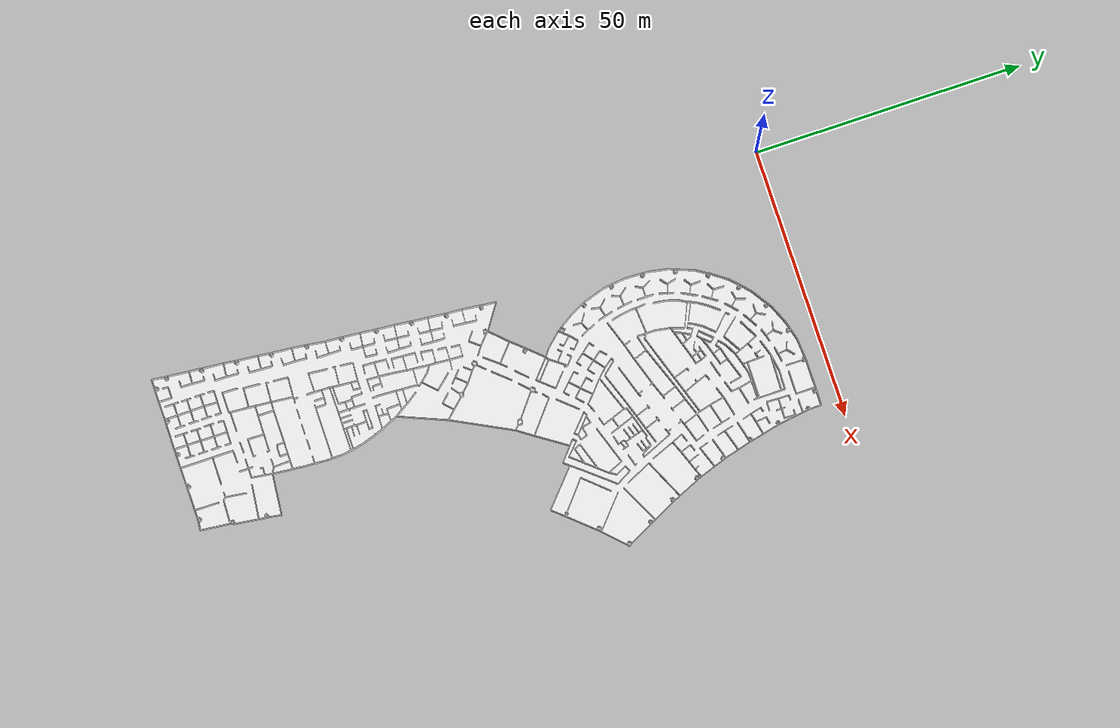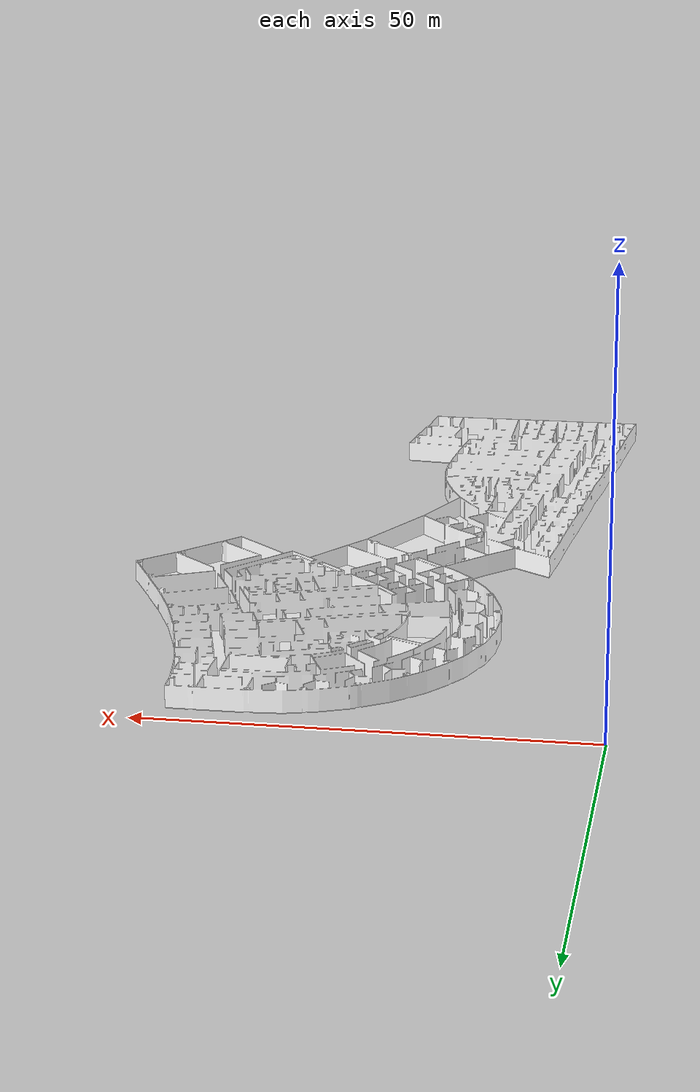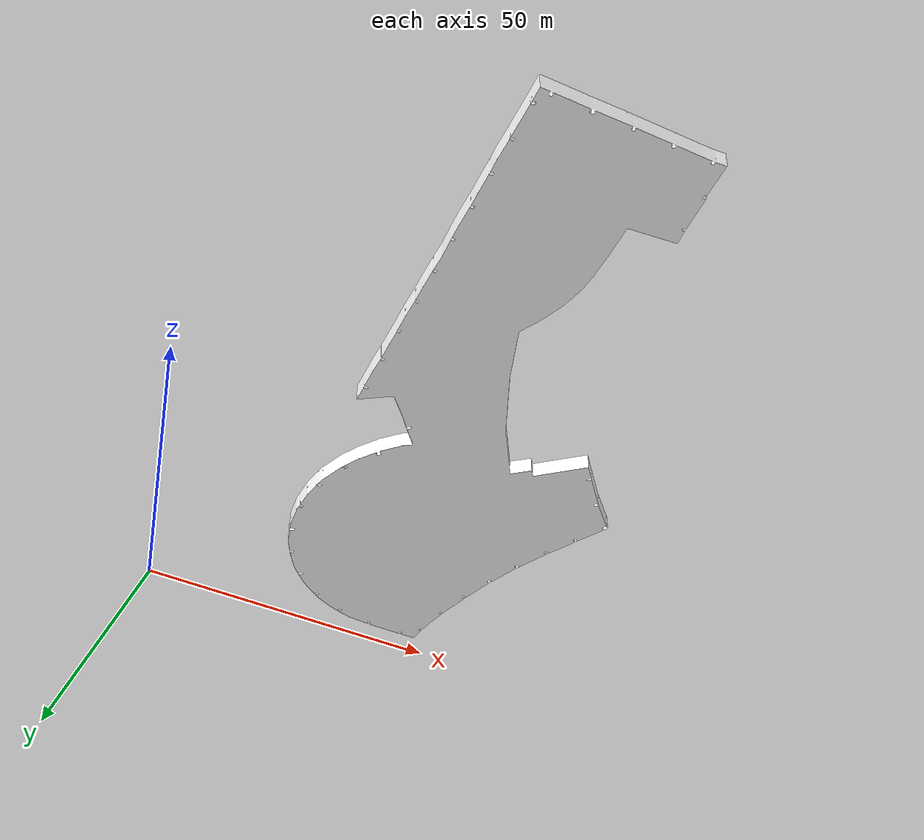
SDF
<?xml version='1.0' encoding='utf-8'?>
<sdf version="1.7">
  <model name="level9_north_level9_both_north_and_south">
    <static>true</static>
    <link name="floor_1">
      <visual name="visual">
        <geometry>
          <mesh>
            <uri>model://level9_north_level9_both_north_and_south/meshes/floor_1.obj</uri>
          </mesh>
        </geometry>
        <material>
          <diffuse>1.0 1.0 1.0</diffuse>
          <specular>0.1 0.1 0.1</specular>
          <pbr>
            <metal>
              <metalness>0.0</metalness>
              <albedo_map>model://level9_north_level9_both_north_and_south/meshes/blue_linoleum.png</albedo_map>
            </metal>
          </pbr>
          <script>
            <uri>model://level9_north_level9_both_north_and_south/meshes/</uri>
            <name>floor_1_Diffuse</name>
          </script>
        </material>
      </visual>
      <collision name="collision">
        <geometry>
          <mesh>
            <uri>model://level9_north_level9_both_north_and_south/meshes/floor_1.obj</uri>
          </mesh>
        </geometry>
        <surface>
          <contact>
            <collide_bitmask>0x01</collide_bitmask>
          </contact>
        </surface>
      </collision>
    </link>
    <link name="wall_1">
      <visual name="wall_1">
        <geometry>
          <mesh>
            <uri>model://level9_north_level9_both_north_and_south/meshes/wall_1.obj</uri>
          </mesh>
        </geometry>
        <material>
          <diffuse>1.0 1.0 1.0</diffuse>
          <specular>0.1 0.1 0.1</specular>
          <pbr>
            <metal>
              <metalness>0.0</metalness>
              <albedo_map>model://level9_north_level9_both_north_and_south/meshes/default.png</albedo_map>
            </metal>
          </pbr>
          <script>
            <uri>model://level9_north_level9_both_north_and_south/meshes/</uri>
            <name>wall_1_Diffuse</name>
          </script>
        </material>
      </visual>
      <collision name="collision">
        <geometry>
          <mesh>
            <uri>model://level9_north_level9_both_north_and_south/meshes/wall_1.obj</uri>
          </mesh>
        </geometry>
        <surface>
          <contact>
            <collide_bitmask>0x01</collide_bitmask>
          </contact>
        </surface>
      </collision>
      <pose>4.636989713309139 -115.89411280613429 0 0 0 0</pose>
    </link>
  </model>
</sdf>
